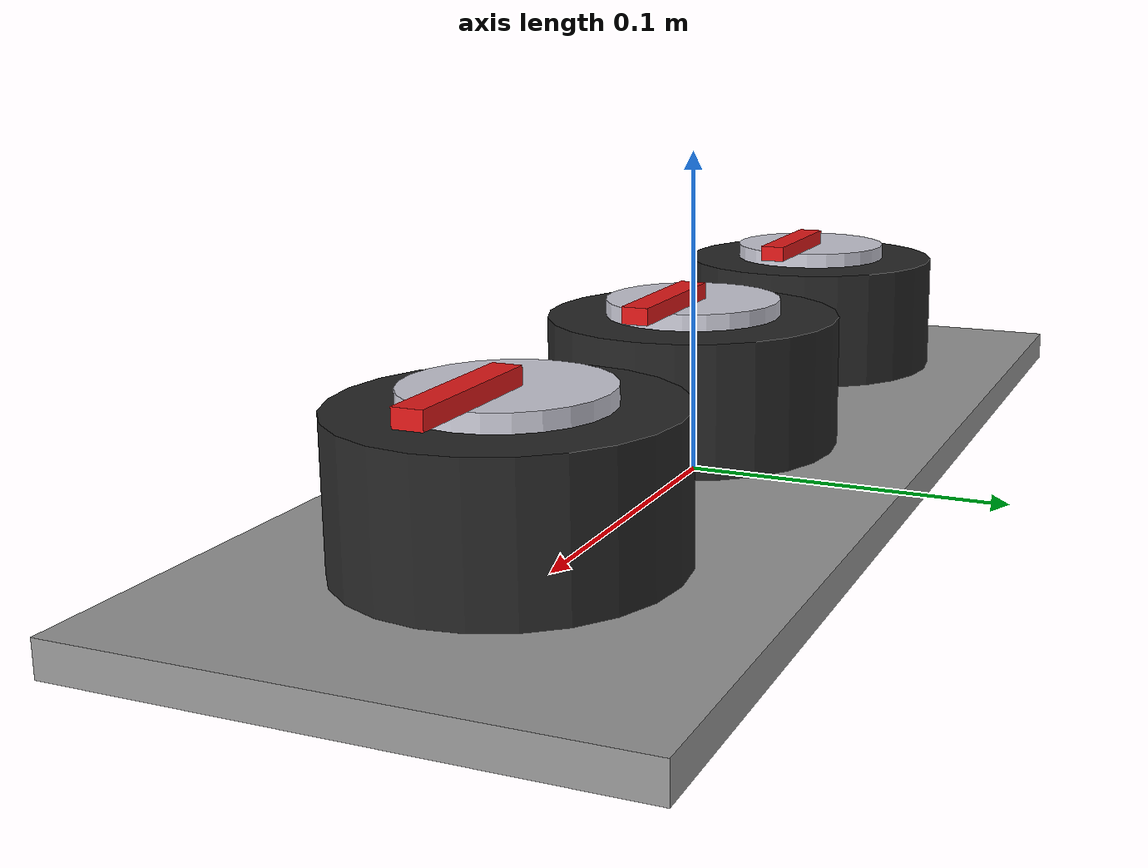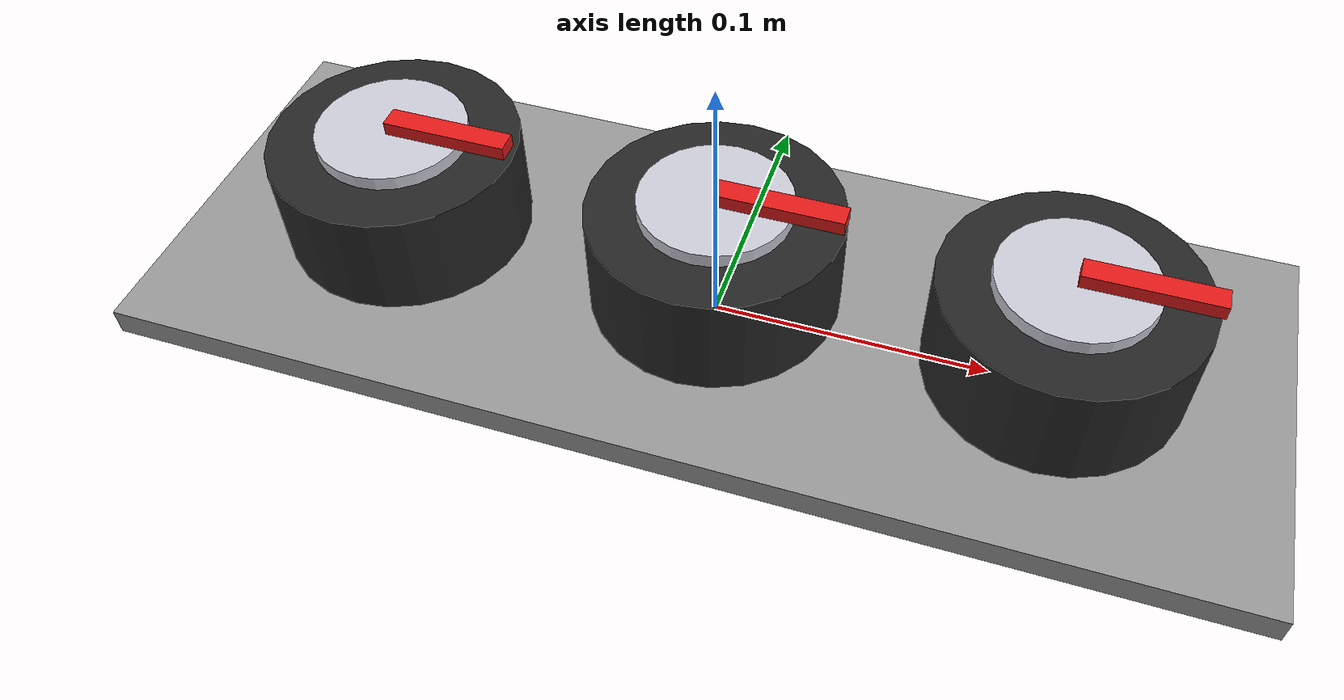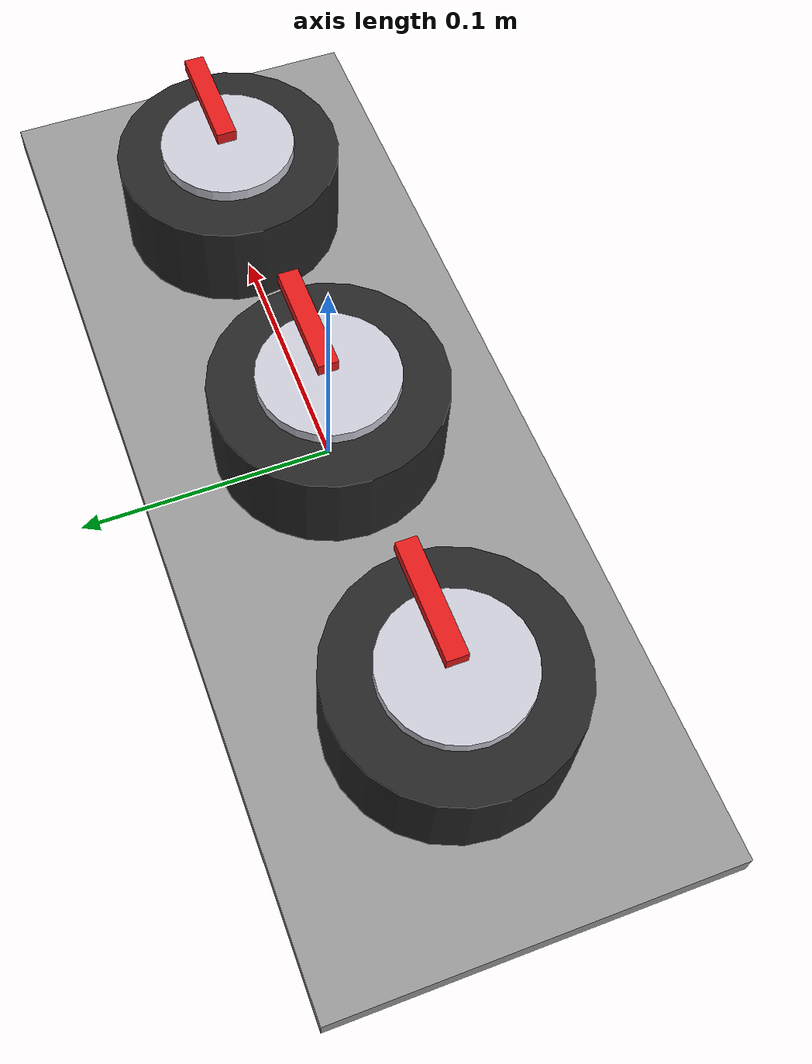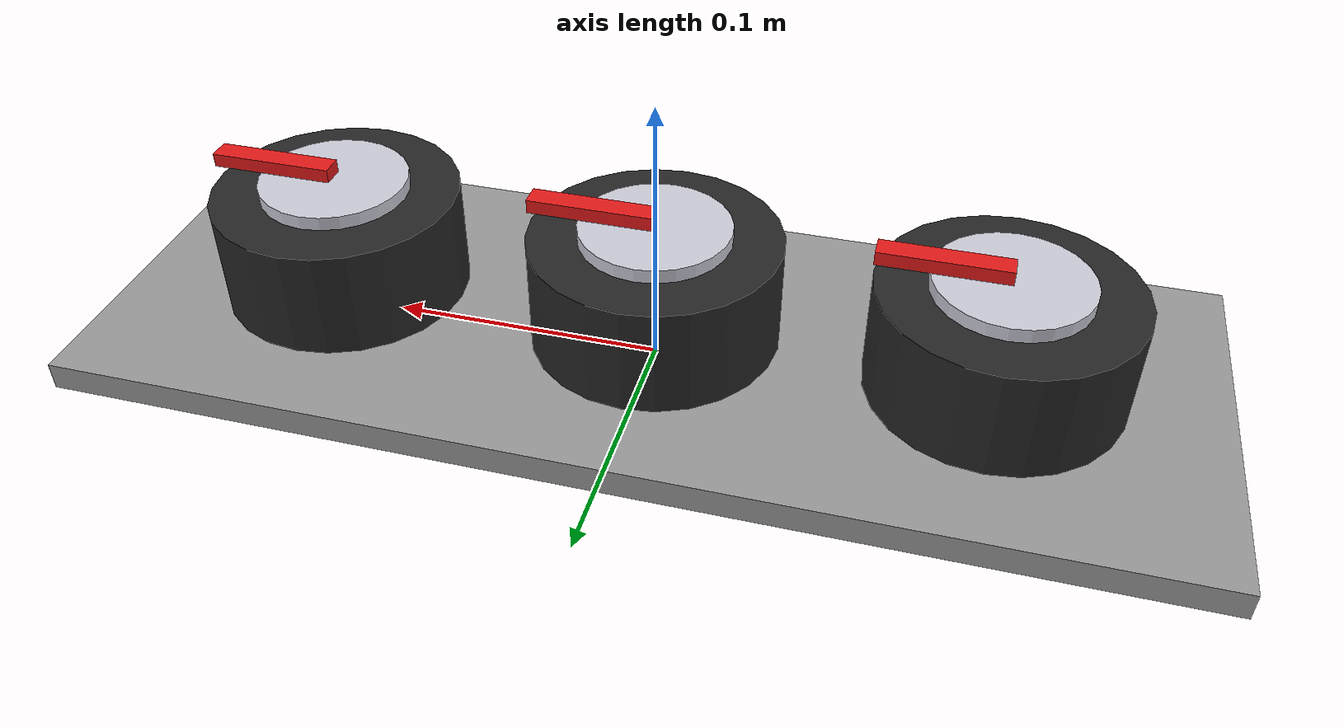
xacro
<?xml version="1.0"?>
<!--
  Minimalny opis robota do testu połączenia z trzema sterownikami moteus.
  Każdy silnik to osobny przegub obrotowy przymocowany do base_link.
-->
<robot name="proxima_manip" xmlns:xacro="http://www.ros.org/wiki/xacro">

  <!-- Argumenty z linii poleceń / launcha -->
  <xacro:arg name="use_mock_hardware" default="false"/>
  <xacro:arg name="can_id_1" default="1"/>
  <xacro:arg name="can_id_2" default="2"/>
  <xacro:arg name="can_id_3" default="3"/>
  <xacro:arg name="effort_max" default="1.0"/>

  <xacro:include filename="$(find proxima_description)/robots/moteus_motor.xacro"/>
  <xacro:include filename="$(find proxima_description)/robots/moteus_test.ros2_control.xacro"/>

  <!-- Bazowa płyta montażowa -->
  <link name="world"/>

  <joint name="world_to_base" type="fixed">
    <parent link="world"/>
    <child link="base_link"/>
    <origin xyz="0 0 0" rpy="0 0 0"/>
  </joint>

  <link name="base_link">
    <visual>
      <origin xyz="0 0 0.005" rpy="0 0 0"/>
      <geometry>
        <box size="0.40 0.15 0.01"/>
      </geometry>
      <material name="plate_grey">
        <color rgba="0.6 0.6 0.6 1.0"/>
      </material>
    </visual>
    <collision>
      <origin xyz="0 0 0.005" rpy="0 0 0"/>
      <geometry>
        <box size="0.40 0.15 0.01"/>
      </geometry>
    </collision>
    <inertial>
      <origin xyz="0 0 0.005" rpy="0 0 0"/>
      <mass value="1.0"/>
      <inertia ixx="0.0019" ixy="0" ixz="0" iyy="0.0133" iyz="0" izz="0.0152"/>
    </inertial>
  </link>

  <!-- Trzy silniki w rzędzie na płycie -->
  <xacro:moteus_motor name="joint1" parent="base_link" xyz="-0.12 0 0.01"/>
  <xacro:moteus_motor name="joint2" parent="base_link" xyz="0.00 0 0.01"/>
  <xacro:moteus_motor name="joint3" parent="base_link" xyz="0.12 0 0.01"/>

  <!-- ros2_control -->
  <xacro:proxima_manip_ros2_control
    name="Proxima_Manip_System"
    use_mock_hardware="$(arg use_mock_hardware)"
    can_id_1="$(arg can_id_1)"
    can_id_2="$(arg can_id_2)"
    can_id_3="$(arg can_id_3)"
    effort_max="$(arg effort_max)"/>

</robot>

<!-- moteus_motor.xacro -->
<robot xmlns:xacro="http://www.ros.org/wiki/xacro">

  <xacro:property name="motor_radius" value="0.045"/>
  <xacro:property name="motor_length" value="0.04"/>
  <xacro:property name="motor_mass" value="0.4"/>

  <xacro:macro name="moteus_motor" params="name parent xyz rpy:='0 0 0'">

    <!-- Korpus silnika -->
    <joint name="${name}_mount" type="fixed">
      <parent link="${parent}"/>
      <child link="${name}_housing"/>
      <origin xyz="${xyz}" rpy="${rpy}"/>
    </joint>

    <link name="${name}_housing">
      <visual>
        <origin xyz="0 0 ${motor_length/2}" rpy="0 0 0"/>
        <geometry>
          <cylinder radius="${motor_radius}" length="${motor_length}"/>
        </geometry>
        <material name="motor_black">
          <color rgba="0.15 0.15 0.15 1.0"/>
        </material>
      </visual>
      <collision>
        <origin xyz="0 0 ${motor_length/2}" rpy="0 0 0"/>
        <geometry>
          <cylinder radius="${motor_radius}" length="${motor_length}"/>
        </geometry>
      </collision>
      <inertial>
        <origin xyz="0 0 ${motor_length/2}" rpy="0 0 0"/>
        <mass value="${motor_mass}"/>
        <inertia
          ixx="${motor_mass*(3*motor_radius*motor_radius + motor_length*motor_length)/12}"
          iyy="${motor_mass*(3*motor_radius*motor_radius + motor_length*motor_length)/12}"
          izz="${motor_mass*motor_radius*motor_radius/2}"
          ixy="0" ixz="0" iyz="0"/>
      </inertial>
    </link>

    <!-- Przegub sterowany przez moteus -->
    <joint name="${name}" type="continuous">
      <parent link="${name}_housing"/>
      <child link="${name}_output"/>
      <origin xyz="0 0 ${motor_length}" rpy="0 0 0"/>
      <axis xyz="0 0 1"/>
      <dynamics damping="0.0" friction="0.0"/>
      <limit lower="-1.5" upper="1.5" effort="100.0" velocity="1.0"/>
    </joint>

    <link name="${name}_output">
      <!-- tarcza wyjściowa -->
      <visual>
        <origin xyz="0 0 0.0025" rpy="0 0 0"/>
        <geometry>
          <cylinder radius="${motor_radius*0.6}" length="0.005"/>
        </geometry>
        <material name="output_silver">
          <color rgba="0.8 0.8 0.85 1.0"/>
        </material>
      </visual>
      <!-- wskazówka pokazująca kąt -->
      <visual>
        <origin xyz="${motor_radius*0.5} 0 0.0075" rpy="0 0 0"/>
        <geometry>
          <box size="${motor_radius} 0.008 0.005"/>
        </geometry>
        <material name="indicator_red">
          <color rgba="0.9 0.1 0.1 1.0"/>
        </material>
      </visual>
      <collision>
        <origin xyz="0 0 0.0025" rpy="0 0 0"/>
        <geometry>
          <cylinder radius="${motor_radius*0.6}" length="0.005"/>
        </geometry>
      </collision>
      <inertial>
        <origin xyz="0 0 0.0025" rpy="0 0 0"/>
        <mass value="0.05"/>
        <inertia ixx="0.00001" iyy="0.00001" izz="0.00002" ixy="0" ixz="0" iyz="0"/>
      </inertial>
    </link>

  </xacro:macro>

</robot>
